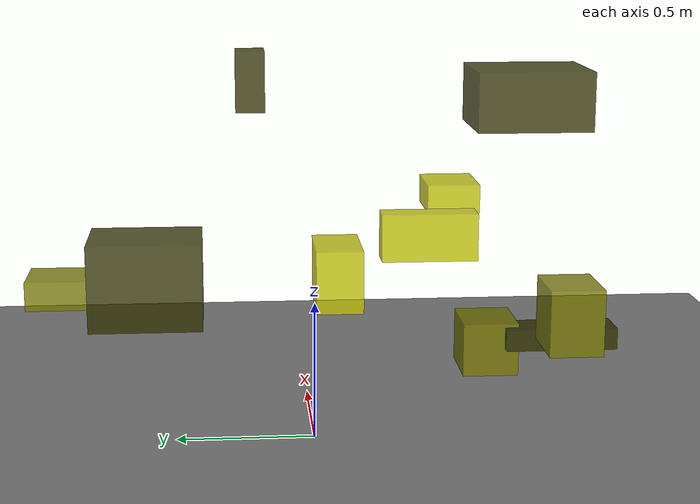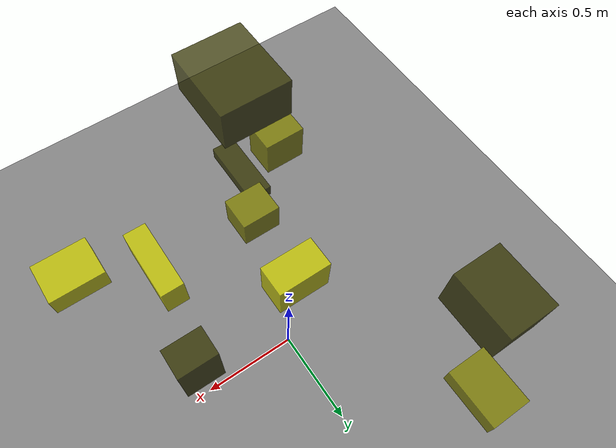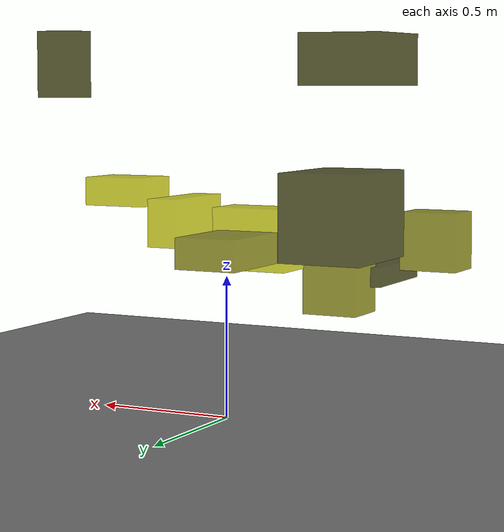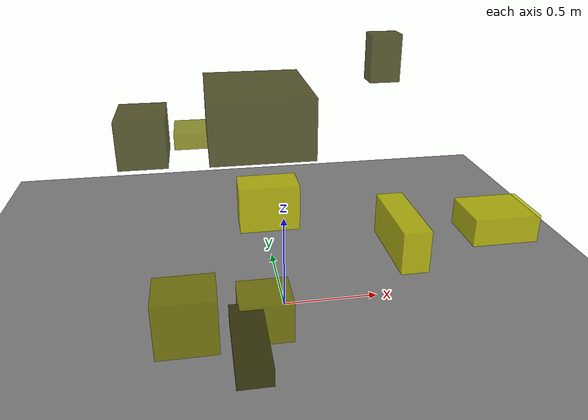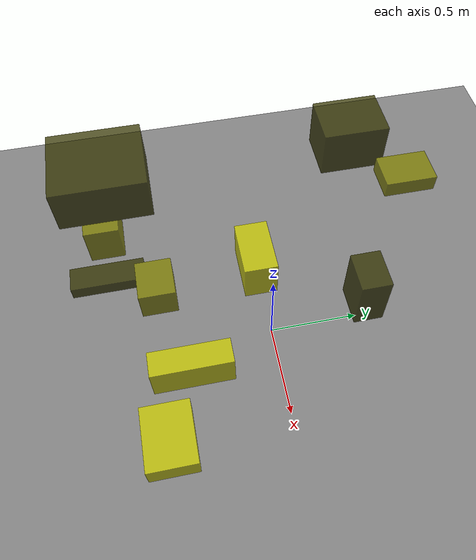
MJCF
<?xml version="1.0"?>
<mujoco model="obstacle_scene">
  <compiler angle="radian" coordinate="local"/>
  <option timestep="0.001" gravity="0 0 -9.81"/>

  <asset>
    <material name="obstacle_mat" rgba="0.8 0.8 0.0 0.8"/>
    <material name="ground_mat" rgba="0.5 0.5 0.5 1"/>
  </asset>

  <worldbody>
    <!-- Ground plane -->
    <geom name="ground" type="plane" size="3 3 0.1" material="ground_mat"/>

    <!-- Obstacles -->
    <body name="obstacle_0" pos="-0.190797 -0.704051 1.257605">
      <geom name="obs_0" type="box" size="0.163325 0.191030 0.098296" rgba="0.2 0.2 0.0 0.8"/>
    </body>
    <body name="obstacle_1" pos="-0.165892 -0.587584 0.397733">
      <geom name="obs_1" type="box" size="0.107766 0.094452 0.090694" rgba="0.5 0.5 0.0 0.8"/>
    </body>
    <body name="obstacle_2" pos="0.767157 -0.595418 0.738836">
      <geom name="obs_2" type="box" size="0.131752 0.103096 0.055927" rgba="0.8 0.8 0.0 0.8"/>
    </body>
    <body name="obstacle_3" pos="-0.246744 -0.823483 0.440362">
      <geom name="obs_3" type="box" size="0.065140 0.190444 0.036511" rgba="0.2 0.2 0.0 0.8"/>
    </body>
    <body name="obstacle_4" pos="-0.466818 -0.809646 0.573629">
      <geom name="obs_4" type="box" size="0.111658 0.088078 0.109766" rgba="0.5 0.5 0.0 0.8"/>
    </body>
    <body name="obstacle_5" pos="-0.084846 -0.074175 0.630185">
      <geom name="obs_5" type="box" size="0.137712 0.080147 0.108132" rgba="0.8 0.8 0.0 0.8"/>
    </body>
    <body name="obstacle_6" pos="-0.683990 0.554032 0.778592">
      <geom name="obs_6" type="box" size="0.129607 0.169978 0.132158" rgba="0.2 0.2 0.0 0.8"/>
    </body>
    <body name="obstacle_7" pos="-0.431294 0.808623 0.685709">
      <geom name="obs_7" type="box" size="0.096519 0.135336 0.045761" rgba="0.5 0.5 0.0 0.8"/>
    </body>
    <body name="obstacle_8" pos="0.430004 -0.465656 0.643245">
      <geom name="obs_8" type="box" size="0.057638 0.183767 0.090991" rgba="0.8 0.8 0.0 0.8"/>
    </body>
    <body name="obstacle_9" pos="0.524250 0.211403 1.233970">
      <geom name="obs_9" type="box" size="0.073298 0.054998 0.114459" rgba="0.2 0.2 0.0 0.8"/>
    </body>
  </worldbody>
</mujoco>
